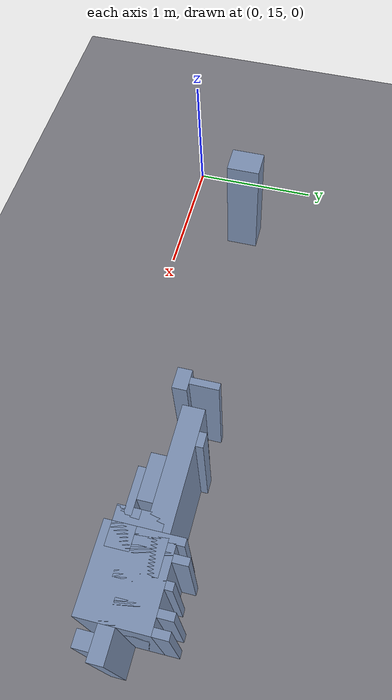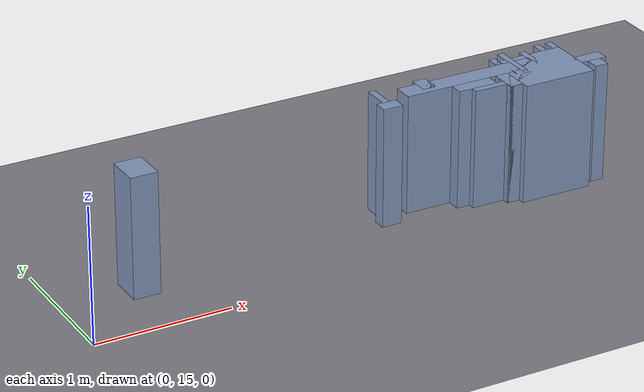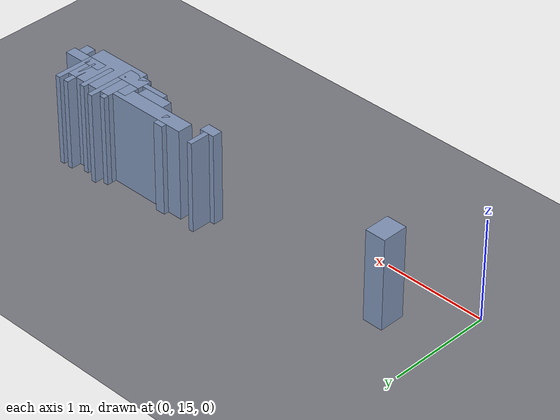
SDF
<sdf version="1.8">
 <world name="capture_fresh">
  <model name="ground_plane">
   <static>true</static>
   <link name="link">
    <collision name="collision">
     <geometry><plane><normal>0 0 1</normal><size>80 80</size></plane></geometry>
    </collision>
    <visual name="visual">
     <geometry><plane><normal>0 0 1</normal><size>80 80</size></plane></geometry>
     <material><ambient>0.40 0.40 0.42 1</ambient><diffuse>0.48 0.48 0.51 1</diffuse></material>
    </visual>
   </link>
  </model>
  <model name="obstacle_71">
   <static>true</static>
   <pose>2.882 15.733 0.450 0 0 0</pose>
   <link name="link">
    <collision name="collision"><geometry><box><size>0.100 0.150 0.900</size></box></geometry></collision>
    <visual name="visual">
     <geometry><box><size>0.100 0.150 0.900</size></box></geometry>
     <material>
      <ambient>0.42 0.48 0.58 1</ambient>
      <diffuse>0.50 0.58 0.72 1</diffuse>
      <specular>0.15 0.15 0.15 1</specular>
     </material>
    </visual>
   </link>
  </model>
  <model name="obstacle_72">
   <static>true</static>
   <pose>3.207 15.683 0.450 0 0 0</pose>
   <link name="link">
    <collision name="collision"><geometry><box><size>1.050 0.150 0.900</size></box></geometry></collision>
    <visual name="visual">
     <geometry><box><size>1.050 0.150 0.900</size></box></geometry>
     <material>
      <ambient>0.42 0.48 0.58 1</ambient>
      <diffuse>0.50 0.58 0.72 1</diffuse>
      <specular>0.15 0.15 0.15 1</specular>
     </material>
    </visual>
   </link>
  </model>
  <model name="obstacle_78">
   <static>true</static>
   <pose>2.507 15.708 0.450 0 0 0</pose>
   <link name="link">
    <collision name="collision"><geometry><box><size>0.050 0.200 0.900</size></box></geometry></collision>
    <visual name="visual">
     <geometry><box><size>0.050 0.200 0.900</size></box></geometry>
     <material>
      <ambient>0.42 0.48 0.58 1</ambient>
      <diffuse>0.50 0.58 0.72 1</diffuse>
      <specular>0.15 0.15 0.15 1</specular>
     </material>
    </visual>
   </link>
  </model>
  <model name="obstacle_79">
   <static>true</static>
   <pose>2.507 15.558 0.450 0 0 0</pose>
   <link name="link">
    <collision name="collision"><geometry><box><size>0.150 0.100 0.900</size></box></geometry></collision>
    <visual name="visual">
     <geometry><box><size>0.150 0.100 0.900</size></box></geometry>
     <material>
      <ambient>0.42 0.48 0.58 1</ambient>
      <diffuse>0.50 0.58 0.72 1</diffuse>
      <specular>0.15 0.15 0.15 1</specular>
     </material>
    </visual>
   </link>
  </model>
  <model name="obstacle_81">
   <static>true</static>
   <pose>3.182 15.558 0.450 0 0 0</pose>
   <link name="link">
    <collision name="collision"><geometry><box><size>0.300 0.100 0.900</size></box></geometry></collision>
    <visual name="visual">
     <geometry><box><size>0.300 0.100 0.900</size></box></geometry>
     <material>
      <ambient>0.42 0.48 0.58 1</ambient>
      <diffuse>0.50 0.58 0.72 1</diffuse>
      <specular>0.15 0.15 0.15 1</specular>
     </material>
    </visual>
   </link>
  </model>
  <model name="obstacle_82">
   <static>true</static>
   <pose>3.282 15.483 0.450 0 0 0</pose>
   <link name="link">
    <collision name="collision"><geometry><box><size>0.300 0.050 0.900</size></box></geometry></collision>
    <visual name="visual">
     <geometry><box><size>0.300 0.050 0.900</size></box></geometry>
     <material>
      <ambient>0.42 0.48 0.58 1</ambient>
      <diffuse>0.50 0.58 0.72 1</diffuse>
      <specular>0.15 0.15 0.15 1</specular>
     </material>
    </visual>
   </link>
  </model>
  <model name="obstacle_83">
   <static>true</static>
   <pose>4.032 15.558 0.450 0 0 0</pose>
   <link name="link">
    <collision name="collision"><geometry><box><size>0.400 0.100 0.900</size></box></geometry></collision>
    <visual name="visual">
     <geometry><box><size>0.400 0.100 0.900</size></box></geometry>
     <material>
      <ambient>0.42 0.48 0.58 1</ambient>
      <diffuse>0.50 0.58 0.72 1</diffuse>
      <specular>0.15 0.15 0.15 1</specular>
     </material>
    </visual>
   </link>
  </model>
  <model name="obstacle_87">
   <static>true</static>
   <pose>4.132 15.458 0.450 0 0 0</pose>
   <link name="link">
    <collision name="collision"><geometry><box><size>0.100 0.100 0.900</size></box></geometry></collision>
    <visual name="visual">
     <geometry><box><size>0.100 0.100 0.900</size></box></geometry>
     <material>
      <ambient>0.42 0.48 0.58 1</ambient>
      <diffuse>0.50 0.58 0.72 1</diffuse>
      <specular>0.15 0.15 0.15 1</specular>
     </material>
    </visual>
   </link>
  </model>
  <model name="obstacle_88">
   <static>true</static>
   <pose>0.582 15.533 0.450 0 0 0</pose>
   <link name="link">
    <collision name="collision"><geometry><box><size>0.200 0.250 0.900</size></box></geometry></collision>
    <visual name="visual">
     <geometry><box><size>0.200 0.250 0.900</size></box></geometry>
     <material>
      <ambient>0.42 0.48 0.58 1</ambient>
      <diffuse>0.50 0.58 0.72 1</diffuse>
      <specular>0.15 0.15 0.15 1</specular>
     </material>
    </visual>
   </link>
  </model>
  <model name="obstacle_91">
   <static>true</static>
   <pose>3.507 15.708 0.450 0 0 0</pose>
   <link name="link">
    <collision name="collision"><geometry><box><size>0.050 0.300 0.900</size></box></geometry></collision>
    <visual name="visual">
     <geometry><box><size>0.050 0.300 0.900</size></box></geometry>
     <material>
      <ambient>0.42 0.48 0.58 1</ambient>
      <diffuse>0.50 0.58 0.72 1</diffuse>
      <specular>0.15 0.15 0.15 1</specular>
     </material>
    </visual>
   </link>
  </model>
  <model name="obstacle_92">
   <static>true</static>
   <pose>3.507 15.483 0.450 0 0 0</pose>
   <link name="link">
    <collision name="collision"><geometry><box><size>0.250 0.150 0.900</size></box></geometry></collision>
    <visual name="visual">
     <geometry><box><size>0.250 0.150 0.900</size></box></geometry>
     <material>
      <ambient>0.42 0.48 0.58 1</ambient>
      <diffuse>0.50 0.58 0.72 1</diffuse>
      <specular>0.15 0.15 0.15 1</specular>
     </material>
    </visual>
   </link>
  </model>
  <model name="obstacle_94">
   <static>true</static>
   <pose>3.907 15.733 0.450 0 0 0</pose>
   <link name="link">
    <collision name="collision"><geometry><box><size>0.050 0.350 0.900</size></box></geometry></collision>
    <visual name="visual">
     <geometry><box><size>0.050 0.350 0.900</size></box></geometry>
     <material>
      <ambient>0.42 0.48 0.58 1</ambient>
      <diffuse>0.50 0.58 0.72 1</diffuse>
      <specular>0.15 0.15 0.15 1</specular>
     </material>
    </visual>
   </link>
  </model>
  <model name="obstacle_95">
   <static>true</static>
   <pose>3.432 15.558 0.450 0 0 0</pose>
   <link name="link">
    <collision name="collision"><geometry><box><size>0.100 0.300 0.900</size></box></geometry></collision>
    <visual name="visual">
     <geometry><box><size>0.100 0.300 0.900</size></box></geometry>
     <material>
      <ambient>0.42 0.48 0.58 1</ambient>
      <diffuse>0.50 0.58 0.72 1</diffuse>
      <specular>0.15 0.15 0.15 1</specular>
     </material>
    </visual>
   </link>
  </model>
  <model name="obstacle_96">
   <static>true</static>
   <pose>3.757 15.683 0.450 0 0 0</pose>
   <link name="link">
    <collision name="collision"><geometry><box><size>0.050 0.350 0.900</size></box></geometry></collision>
    <visual name="visual">
     <geometry><box><size>0.050 0.350 0.900</size></box></geometry>
     <material>
      <ambient>0.42 0.48 0.58 1</ambient>
      <diffuse>0.50 0.58 0.72 1</diffuse>
      <specular>0.15 0.15 0.15 1</specular>
     </material>
    </visual>
   </link>
  </model>
  <model name="obstacle_98">
   <static>true</static>
   <pose>3.607 15.708 0.450 0 0 0</pose>
   <link name="link">
    <collision name="collision"><geometry><box><size>0.050 0.400 0.900</size></box></geometry></collision>
    <visual name="visual">
     <geometry><box><size>0.050 0.400 0.900</size></box></geometry>
     <material>
      <ambient>0.42 0.48 0.58 1</ambient>
      <diffuse>0.50 0.58 0.72 1</diffuse>
      <specular>0.15 0.15 0.15 1</specular>
     </material>
    </visual>
   </link>
  </model>
  <model name="obstacle_99">
   <static>true</static>
   <pose>3.757 15.583 0.450 0 0 0</pose>
   <link name="link">
    <collision name="collision"><geometry><box><size>0.550 0.450 0.900</size></box></geometry></collision>
    <visual name="visual">
     <geometry><box><size>0.550 0.450 0.900</size></box></geometry>
     <material>
      <ambient>0.42 0.48 0.58 1</ambient>
      <diffuse>0.50 0.58 0.72 1</diffuse>
      <specular>0.15 0.15 0.15 1</specular>
     </material>
    </visual>
   </link>
  </model>
  <model name="obstacle_100">
   <static>true</static>
   <pose>4.007 15.708 0.450 0 0 0</pose>
   <link name="link">
    <collision name="collision"><geometry><box><size>0.050 0.400 0.900</size></box></geometry></collision>
    <visual name="visual">
     <geometry><box><size>0.050 0.400 0.900</size></box></geometry>
     <material>
      <ambient>0.42 0.48 0.58 1</ambient>
      <diffuse>0.50 0.58 0.72 1</diffuse>
      <specular>0.15 0.15 0.15 1</specular>
     </material>
    </visual>
   </link>
  </model>
 </world>
</sdf>
